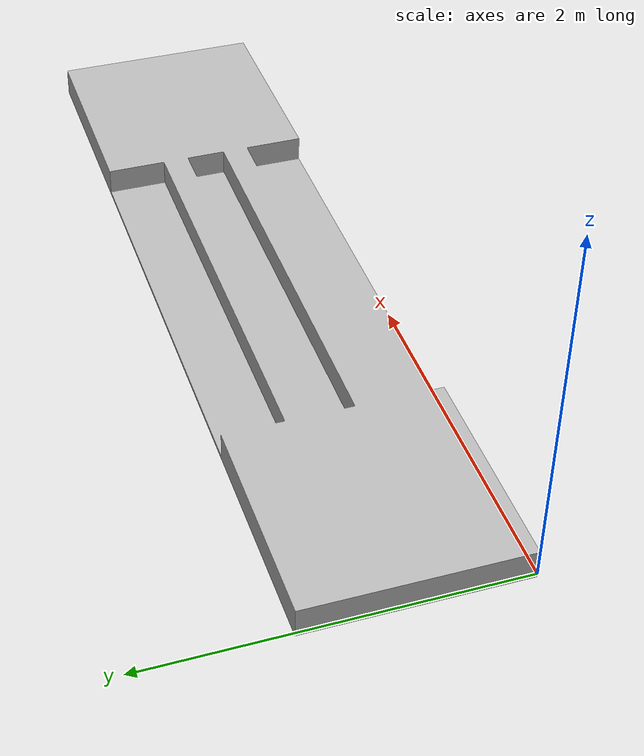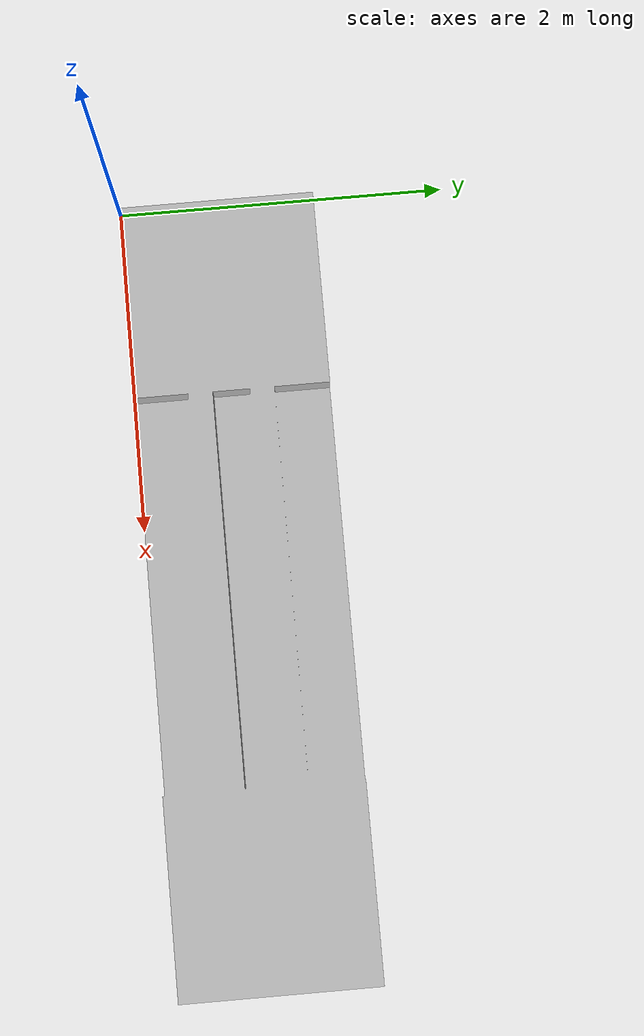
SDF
<?xml version="1.0" ?>
<sdf version="1.6">
  <model name="bridge376">
    <static>true</static>
    <pose>0 0 0 0 0 0</pose>
    <link name="link">
      <collision name="collision">
        <geometry>
          <mesh>
            <scale>0.01 0.01 0.01</scale>
            <uri>model://bridge376/Bridge_376mm.stl</uri>
          </mesh>
        </geometry>
        <surface>
          <friction>
            <ode>
              <mu>0.8</mu>
              <mu2>0.8</mu2>
            </ode>
          </friction>
        </surface>
      </collision>
      <sensor name="bridge_contact" type="contact">
        <always_on>true</always_on>
        <!-- Zero requests one publication for every physics update. -->
        <update_rate>0</update_rate>
        <topic>/bridge/contacts</topic>
        <contact>
          <collision>collision</collision>
        </contact>
      </sensor>
      <visual name="visual">
        <geometry>
          <mesh>
            <scale>0.01 0.01 0.01</scale>
            <uri>model://bridge376/Bridge_376mm.stl</uri>
          </mesh>
        </geometry>
      </visual>
    </link>
  </model>
</sdf>
